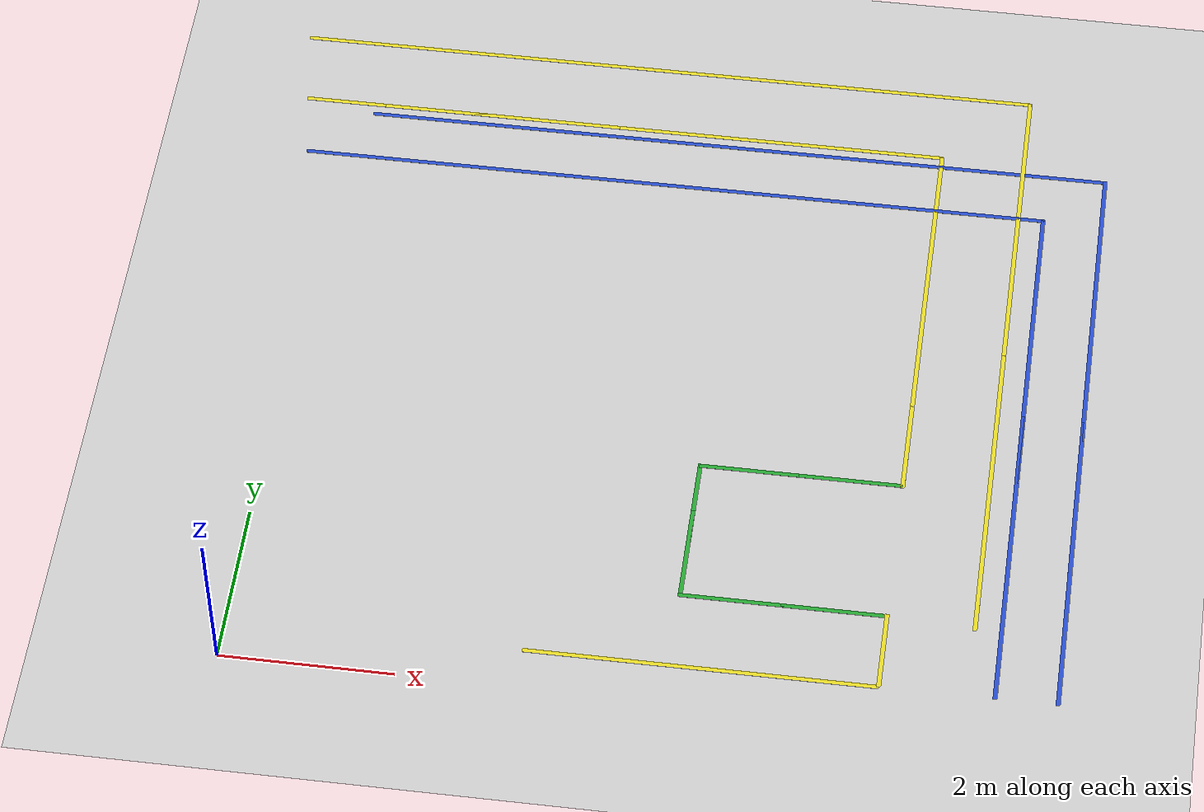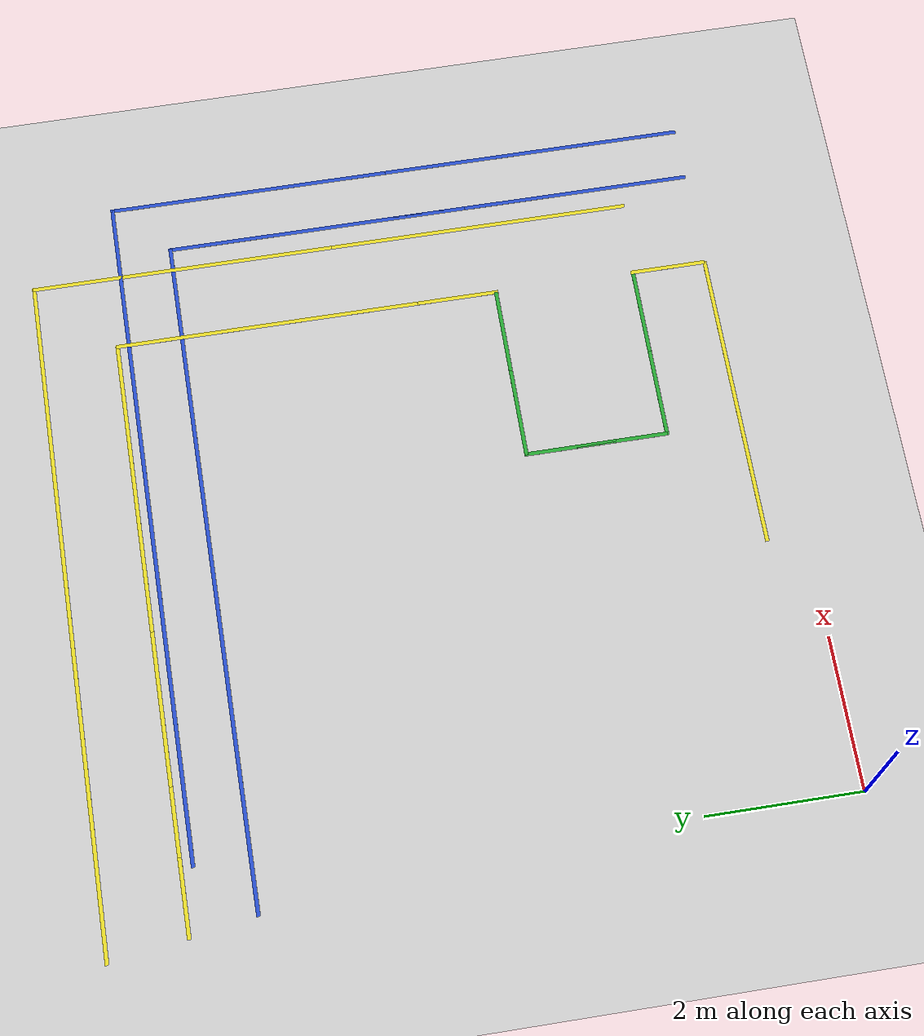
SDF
<sdf version="1.7">
 <world name="default">
  <model name="ground_plane">
   <static>1</static>
   <link name="link">
    <collision name="collision">
     <geometry><plane><normal>0 0 1</normal><size>100 100</size></plane></geometry>
     <surface>
      <contact><collide_bitmask>65535</collide_bitmask></contact>
      <friction><ode><mu>100</mu><mu2>50</mu2></ode></friction>
     </surface>
    </collision>
    <visual name="visual">
     <cast_shadows>0</cast_shadows>
     <geometry><plane><normal>0 0 1</normal><size>100 100</size></plane></geometry>
     <material>
      <script><uri>file://media/materials/scripts/gazebo.material</uri><name>Gazebo/Grey</name></script>
     </material>
    </visual>
   </link>
  </model>
  <model name="line4m">
   <link name="link_3">
    <inertial>
     <mass>1</mass>
     <inertia>
      <ixx>0.166667</ixx>
      <ixy>0</ixy>
      <ixz>0</ixz>
      <iyy>0.166667</iyy>
      <iyz>0</iyz>
      <izz>0.166667</izz>
     </inertia>
    </inertial>
    <visual name="visual">
     <geometry><box><size>0.05 4 0.001</size></box></geometry>
     <material>
      <lighting>1</lighting>
      <script><uri>file://media/materials/scripts/gazebo.material</uri><name>Gazebo/Yellow</name></script>
     </material>
    </visual>
    <collision name="collision">
     <geometry><box><size>0.05 4 1e-06</size></box></geometry>
     <surface>
      <friction>
       <ode><mu>1</mu><mu2>1</mu2><fdir1>0 0 0</fdir1><slip1>0</slip1><slip2>0</slip2></ode>
       <torsional>
        <coefficient>1</coefficient>
        <patch_radius>0</patch_radius>
        <surface_radius>0</surface_radius>
        <use_patch_radius>1</use_patch_radius>
        <ode><slip>0</slip></ode>
       </torsional>
      </friction>
      <bounce><restitution_coefficient>0</restitution_coefficient><threshold>1e+06</threshold></bounce>
      <contact>
       <collide_without_contact>0</collide_without_contact>
       <collide_without_contact_bitmask>1</collide_without_contact_bitmask>
       <collide_bitmask>1</collide_bitmask>
       <ode>
        <soft_cfm>0</soft_cfm>
        <soft_erp>0.2</soft_erp>
        <kp>1e+13</kp>
        <kd>1</kd>
        <max_vel>0.01</max_vel>
        <min_depth>0</min_depth>
       </ode>
       <bullet>
        <split_impulse>1</split_impulse>
        <split_impulse_penetration_threshold>-0.01</split_impulse_penetration_threshold>
        <soft_cfm>0</soft_cfm>
        <soft_erp>0.2</soft_erp>
        <kp>1e+13</kp>
        <kd>1</kd>
       </bullet>
      </contact>
     </surface>
    </collision>
   </link>
   <static>1</static>
   <pose>8.345 7.37225 0 0 -0 0</pose>
  </model>
  <model name="line9m_1">
   <link name="link_1">
    <inertial>
     <mass>1</mass>
     <inertia>
      <ixx>0.166667</ixx>
      <ixy>0</ixy>
      <ixz>0</ixz>
      <iyy>0.166667</iyy>
      <iyz>0</iyz>
      <izz>0.166667</izz>
     </inertia>
    </inertial>
    <visual name="visual">
     <geometry><box><size>9 0.05 0.001</size></box></geometry>
     <material>
      <lighting>1</lighting>
      <script><uri>file://media/materials/scripts/gazebo.material</uri><name>Gazebo/Yellow</name></script>
     </material>
    </visual>
    <collision name="collision">
     <geometry><box><size>9 0.05 0.001</size></box></geometry>
     <surface>
      <friction>
       <ode><mu>1</mu><mu2>1</mu2><fdir1>0 0 0</fdir1><slip1>0</slip1><slip2>0</slip2></ode>
       <torsional>
        <coefficient>1</coefficient>
        <patch_radius>0</patch_radius>
        <surface_radius>0</surface_radius>
        <use_patch_radius>1</use_patch_radius>
        <ode><slip>0</slip></ode>
       </torsional>
      </friction>
      <bounce><restitution_coefficient>0</restitution_coefficient><threshold>1e+06</threshold></bounce>
      <contact>
       <collide_without_contact>0</collide_without_contact>
       <collide_without_contact_bitmask>1</collide_without_contact_bitmask>
       <collide_bitmask>1</collide_bitmask>
       <ode>
        <soft_cfm>0</soft_cfm>
        <soft_erp>0.2</soft_erp>
        <kp>1e+13</kp>
        <kd>1</kd>
        <max_vel>0.01</max_vel>
        <min_depth>0</min_depth>
       </ode>
       <bullet>
        <split_impulse>1</split_impulse>
        <split_impulse_penetration_threshold>-0.01</split_impulse_penetration_threshold>
        <soft_cfm>0</soft_cfm>
        <soft_erp>0.2</soft_erp>
        <kp>1e+13</kp>
        <kd>1</kd>
       </bullet>
      </contact>
     </surface>
    </collision>
   </link>
   <static>1</static>
   <pose>3.87 9.35 0 0 -0 0</pose>
  </model>
  <model name="line4m_clone">
   <link name="link_3">
    <inertial>
     <mass>1</mass>
     <inertia>
      <ixx>0.166667</ixx>
      <ixy>0</ixy>
      <ixz>0</ixz>
      <iyy>0.166667</iyy>
      <iyz>0</iyz>
      <izz>0.166667</izz>
     </inertia>
    </inertial>
    <visual name="visual">
     <geometry><box><size>0.05 4 0.001</size></box></geometry>
     <material>
      <lighting>1</lighting>
      <script><uri>file://media/materials/scripts/gazebo.material</uri><name>Gazebo/Yellow</name></script>
     </material>
    </visual>
    <collision name="collision">
     <geometry><box><size>0.05 4 1e-06</size></box></geometry>
     <surface>
      <friction>
       <ode><mu>1</mu><mu2>1</mu2><fdir1>0 0 0</fdir1><slip1>0</slip1><slip2>0</slip2></ode>
       <torsional>
        <coefficient>1</coefficient>
        <patch_radius>0</patch_radius>
        <surface_radius>0</surface_radius>
        <use_patch_radius>1</use_patch_radius>
        <ode><slip>0</slip></ode>
       </torsional>
      </friction>
      <bounce><restitution_coefficient>0</restitution_coefficient><threshold>1e+06</threshold></bounce>
      <contact>
       <collide_without_contact>0</collide_without_contact>
       <collide_without_contact_bitmask>1</collide_without_contact_bitmask>
       <collide_bitmask>1</collide_bitmask>
       <ode>
        <soft_cfm>0</soft_cfm>
        <soft_erp>0.2</soft_erp>
        <kp>1e+13</kp>
        <kd>1</kd>
        <max_vel>0.01</max_vel>
        <min_depth>0</min_depth>
       </ode>
       <bullet>
        <split_impulse>1</split_impulse>
        <split_impulse_penetration_threshold>-0.01</split_impulse_penetration_threshold>
        <soft_cfm>0</soft_cfm>
        <soft_erp>0.2</soft_erp>
        <kp>1e+13</kp>
        <kd>1</kd>
       </bullet>
      </contact>
     </surface>
    </collision>
   </link>
   <static>1</static>
   <pose>8.345 3.39734 0 0 -0 0</pose>
  </model>
  <model name="line4m_4">
   <link name="link_3">
    <inertial>
     <mass>1</mass>
     <inertia>
      <ixx>0.166667</ixx>
      <ixy>0</ixy>
      <ixz>0</ixz>
      <iyy>0.166667</iyy>
      <iyz>0</iyz>
      <izz>0.166667</izz>
     </inertia>
    </inertial>
    <visual name="visual">
     <geometry><box><size>0.05 4 0.001</size></box></geometry>
     <material>
      <lighting>1</lighting>
      <script><uri>file://media/materials/scripts/gazebo.material</uri><name>Gazebo/Blue</name></script>
     </material>
    </visual>
    <collision name="collision">
     <geometry><box><size>0.05 4 1e-06</size></box></geometry>
     <surface>
      <friction>
       <ode><mu>1</mu><mu2>1</mu2><fdir1>0 0 0</fdir1><slip1>0</slip1><slip2>0</slip2></ode>
       <torsional>
        <coefficient>1</coefficient>
        <patch_radius>0</patch_radius>
        <surface_radius>0</surface_radius>
        <use_patch_radius>1</use_patch_radius>
        <ode><slip>0</slip></ode>
       </torsional>
      </friction>
      <bounce><restitution_coefficient>0</restitution_coefficient><threshold>1e+06</threshold></bounce>
      <contact>
       <collide_without_contact>0</collide_without_contact>
       <collide_without_contact_bitmask>1</collide_without_contact_bitmask>
       <collide_bitmask>1</collide_bitmask>
       <ode>
        <soft_cfm>0</soft_cfm>
        <soft_erp>0.2</soft_erp>
        <kp>1e+13</kp>
        <kd>1</kd>
        <max_vel>0.01</max_vel>
        <min_depth>0</min_depth>
       </ode>
       <bullet>
        <split_impulse>1</split_impulse>
        <split_impulse_penetration_threshold>-0.01</split_impulse_penetration_threshold>
        <soft_cfm>0</soft_cfm>
        <soft_erp>0.2</soft_erp>
        <kp>1e+13</kp>
        <kd>1</kd>
       </bullet>
      </contact>
     </surface>
    </collision>
   </link>
   <static>1</static>
   <pose>9.345 2.5 0 0 -0 0</pose>
  </model>
  <model name="line4m_4_clone">
   <link name="link_3">
    <inertial>
     <mass>1</mass>
     <inertia>
      <ixx>0.166667</ixx>
      <ixy>0</ixy>
      <ixz>0</ixz>
      <iyy>0.166667</iyy>
      <iyz>0</iyz>
      <izz>0.166667</izz>
     </inertia>
    </inertial>
    <visual name="visual">
     <geometry><box><size>0.05 4 0.001</size></box></geometry>
     <material>
      <lighting>1</lighting>
      <script><uri>file://media/materials/scripts/gazebo.material</uri><name>Gazebo/Blue</name></script>
     </material>
    </visual>
    <collision name="collision">
     <geometry><box><size>0.05 4 1e-06</size></box></geometry>
     <surface>
      <friction>
       <ode><mu>1</mu><mu2>1</mu2><fdir1>0 0 0</fdir1><slip1>0</slip1><slip2>0</slip2></ode>
       <torsional>
        <coefficient>1</coefficient>
        <patch_radius>0</patch_radius>
        <surface_radius>0</surface_radius>
        <use_patch_radius>1</use_patch_radius>
        <ode><slip>0</slip></ode>
       </torsional>
      </friction>
      <bounce><restitution_coefficient>0</restitution_coefficient><threshold>1e+06</threshold></bounce>
      <contact>
       <collide_without_contact>0</collide_without_contact>
       <collide_without_contact_bitmask>1</collide_without_contact_bitmask>
       <collide_bitmask>1</collide_bitmask>
       <ode>
        <soft_cfm>0</soft_cfm>
        <soft_erp>0.2</soft_erp>
        <kp>1e+13</kp>
        <kd>1</kd>
        <max_vel>0.01</max_vel>
        <min_depth>0</min_depth>
       </ode>
       <bullet>
        <split_impulse>1</split_impulse>
        <split_impulse_penetration_threshold>-0.01</split_impulse_penetration_threshold>
        <soft_cfm>0</soft_cfm>
        <soft_erp>0.2</soft_erp>
        <kp>1e+13</kp>
        <kd>1</kd>
       </bullet>
      </contact>
     </surface>
    </collision>
   </link>
   <static>1</static>
   <pose>9.345 6.225 0 0 -0 0</pose>
  </model>
  <model name="line9m_11">
   <link name="link_1">
    <inertial>
     <mass>1</mass>
     <inertia>
      <ixx>0.166667</ixx>
      <ixy>0</ixy>
      <ixz>0</ixz>
      <iyy>0.166667</iyy>
      <iyz>0</iyz>
      <izz>0.166667</izz>
     </inertia>
    </inertial>
    <visual name="visual">
     <geometry><box><size>9 0.05 0.001</size></box></geometry>
     <material>
      <lighting>1</lighting>
      <script><uri>file://media/materials/scripts/gazebo.material</uri><name>Gazebo/Blue</name></script>
     </material>
    </visual>
    <collision name="collision">
     <geometry><box><size>9 0.05 0.001</size></box></geometry>
     <surface>
      <friction>
       <ode><mu>1</mu><mu2>1</mu2><fdir1>0 0 0</fdir1><slip1>0</slip1><slip2>0</slip2></ode>
       <torsional>
        <coefficient>1</coefficient>
        <patch_radius>0</patch_radius>
        <surface_radius>0</surface_radius>
        <use_patch_radius>1</use_patch_radius>
        <ode><slip>0</slip></ode>
       </torsional>
      </friction>
      <bounce><restitution_coefficient>0</restitution_coefficient><threshold>1e+06</threshold></bounce>
      <contact>
       <collide_without_contact>0</collide_without_contact>
       <collide_without_contact_bitmask>1</collide_without_contact_bitmask>
       <collide_bitmask>1</collide_bitmask>
       <ode>
        <soft_cfm>0</soft_cfm>
        <soft_erp>0.2</soft_erp>
        <kp>1e+13</kp>
        <kd>1</kd>
        <max_vel>0.01</max_vel>
        <min_depth>0</min_depth>
       </ode>
       <bullet>
        <split_impulse>1</split_impulse>
        <split_impulse_penetration_threshold>-0.01</split_impulse_penetration_threshold>
        <soft_cfm>0</soft_cfm>
        <soft_erp>0.2</soft_erp>
        <kp>1e+13</kp>
        <kd>1</kd>
       </bullet>
      </contact>
     </surface>
    </collision>
   </link>
   <static>1</static>
   <pose>4.867 8.2 0 0 -0 0</pose>
  </model>
  <model name="line9m_14">
   <link name="link_1">
    <inertial>
     <mass>1</mass>
     <inertia>
      <ixx>0.166667</ixx>
      <ixy>0</ixy>
      <ixz>0</ixz>
      <iyy>0.166667</iyy>
      <iyz>0</iyz>
      <izz>0.166667</izz>
     </inertia>
    </inertial>
    <visual name="visual">
     <geometry><box><size>9 0.05 0.001</size></box></geometry>
     <material>
      <lighting>1</lighting>
      <script><uri>file://media/materials/scripts/gazebo.material</uri><name>Gazebo/Blue</name></script>
     </material>
    </visual>
    <collision name="collision">
     <geometry><box><size>9 0.05 0.001</size></box></geometry>
     <surface>
      <friction>
       <ode><mu>1</mu><mu2>1</mu2><fdir1>0 0 0</fdir1><slip1>0</slip1><slip2>0</slip2></ode>
       <torsional>
        <coefficient>1</coefficient>
        <patch_radius>0</patch_radius>
        <surface_radius>0</surface_radius>
        <use_patch_radius>1</use_patch_radius>
        <ode><slip>0</slip></ode>
       </torsional>
      </friction>
      <bounce><restitution_coefficient>0</restitution_coefficient><threshold>1e+06</threshold></bounce>
      <contact>
       <collide_without_contact>0</collide_without_contact>
       <collide_without_contact_bitmask>1</collide_without_contact_bitmask>
       <collide_bitmask>1</collide_bitmask>
       <ode>
        <soft_cfm>0</soft_cfm>
        <soft_erp>0.2</soft_erp>
        <kp>1e+13</kp>
        <kd>1</kd>
        <max_vel>0.01</max_vel>
        <min_depth>0</min_depth>
       </ode>
       <bullet>
        <split_impulse>1</split_impulse>
        <split_impulse_penetration_threshold>-0.01</split_impulse_penetration_threshold>
        <soft_cfm>0</soft_cfm>
        <soft_erp>0.2</soft_erp>
        <kp>1e+13</kp>
        <kd>1</kd>
       </bullet>
      </contact>
     </surface>
    </collision>
   </link>
   <static>1</static>
   <pose>4.16033 7.5 0 0 -0 0</pose>
  </model>
  <model name="line4m_5">
   <link name="link_3">
    <inertial>
     <mass>1</mass>
     <inertia>
      <ixx>0.166667</ixx>
      <ixy>0</ixy>
      <ixz>0</ixz>
      <iyy>0.166667</iyy>
      <iyz>0</iyz>
      <izz>0.166667</izz>
     </inertia>
    </inertial>
    <visual name="visual">
     <geometry><box><size>0.05 4 0.001</size></box></geometry>
     <material>
      <lighting>1</lighting>
      <script><uri>file://media/materials/scripts/gazebo.material</uri><name>Gazebo/Blue</name></script>
     </material>
    </visual>
    <collision name="collision">
     <geometry><box><size>0.05 4 1e-06</size></box></geometry>
     <surface>
      <friction>
       <ode><mu>1</mu><mu2>1</mu2><fdir1>0 0 0</fdir1><slip1>0</slip1><slip2>0</slip2></ode>
       <torsional>
        <coefficient>1</coefficient>
        <patch_radius>0</patch_radius>
        <surface_radius>0</surface_radius>
        <use_patch_radius>1</use_patch_radius>
        <ode><slip>0</slip></ode>
       </torsional>
      </friction>
      <bounce><restitution_coefficient>0</restitution_coefficient><threshold>1e+06</threshold></bounce>
      <contact>
       <collide_without_contact>0</collide_without_contact>
       <collide_without_contact_bitmask>1</collide_without_contact_bitmask>
       <collide_bitmask>1</collide_bitmask>
       <ode>
        <soft_cfm>0</soft_cfm>
        <soft_erp>0.2</soft_erp>
        <kp>1e+13</kp>
        <kd>1</kd>
        <max_vel>0.01</max_vel>
        <min_depth>0</min_depth>
       </ode>
       <bullet>
        <split_impulse>1</split_impulse>
        <split_impulse_penetration_threshold>-0.01</split_impulse_penetration_threshold>
        <soft_cfm>0</soft_cfm>
        <soft_erp>0.2</soft_erp>
        <kp>1e+13</kp>
        <kd>1</kd>
       </bullet>
      </contact>
     </surface>
    </collision>
   </link>
   <static>1</static>
   <pose>8.645 5.52339 0 0 -0 0</pose>
  </model>
  <model name="line4m_5_clone_0">
   <link name="link_3">
    <inertial>
     <mass>1</mass>
     <inertia>
      <ixx>0.166667</ixx>
      <ixy>0</ixy>
      <ixz>0</ixz>
      <iyy>0.166667</iyy>
      <iyz>0</iyz>
      <izz>0.166667</izz>
     </inertia>
    </inertial>
    <visual name="visual">
     <geometry><box><size>0.05 4 0.001</size></box></geometry>
     <material>
      <lighting>1</lighting>
      <script><uri>file://media/materials/scripts/gazebo.material</uri><name>Gazebo/Blue</name></script>
     </material>
    </visual>
    <collision name="collision">
     <geometry><box><size>0.05 4 1e-06</size></box></geometry>
     <surface>
      <friction>
       <ode><mu>1</mu><mu2>1</mu2><fdir1>0 0 0</fdir1><slip1>0</slip1><slip2>0</slip2></ode>
       <torsional>
        <coefficient>1</coefficient>
        <patch_radius>0</patch_radius>
        <surface_radius>0</surface_radius>
        <use_patch_radius>1</use_patch_radius>
        <ode><slip>0</slip></ode>
       </torsional>
      </friction>
      <bounce><restitution_coefficient>0</restitution_coefficient><threshold>1e+06</threshold></bounce>
      <contact>
       <collide_without_contact>0</collide_without_contact>
       <collide_without_contact_bitmask>1</collide_without_contact_bitmask>
       <collide_bitmask>1</collide_bitmask>
       <ode>
        <soft_cfm>0</soft_cfm>
        <soft_erp>0.2</soft_erp>
        <kp>1e+13</kp>
        <kd>1</kd>
        <max_vel>0.01</max_vel>
        <min_depth>0</min_depth>
       </ode>
       <bullet>
        <split_impulse>1</split_impulse>
        <split_impulse_penetration_threshold>-0.01</split_impulse_penetration_threshold>
        <soft_cfm>0</soft_cfm>
        <soft_erp>0.2</soft_erp>
        <kp>1e+13</kp>
        <kd>1</kd>
       </bullet>
      </contact>
     </surface>
    </collision>
   </link>
   <static>1</static>
   <pose>8.645 2.5 0 0 -0 0</pose>
  </model>
  <model name="line4m_20">
   <link name="link_3">
    <inertial>
     <mass>1</mass>
     <inertia>
      <ixx>0.166667</ixx>
      <ixy>0</ixy>
      <ixz>0</ixz>
      <iyy>0.166667</iyy>
      <iyz>0</iyz>
      <izz>0.166667</izz>
     </inertia>
    </inertial>
    <visual name="visual">
     <geometry><box><size>0.05 4 0.001</size></box></geometry>
     <material>
      <lighting>1</lighting>
      <script><uri>file://media/materials/scripts/gazebo.material</uri><name>Gazebo/Yellow</name></script>
     </material>
    </visual>
    <collision name="collision">
     <geometry><box><size>0.05 4 1e-06</size></box></geometry>
     <surface>
      <friction>
       <ode><mu>1</mu><mu2>1</mu2><fdir1>0 0 0</fdir1><slip1>0</slip1><slip2>0</slip2></ode>
       <torsional>
        <coefficient>1</coefficient>
        <patch_radius>0</patch_radius>
        <surface_radius>0</surface_radius>
        <use_patch_radius>1</use_patch_radius>
        <ode><slip>0</slip></ode>
       </torsional>
      </friction>
      <bounce><restitution_coefficient>0</restitution_coefficient><threshold>1e+06</threshold></bounce>
      <contact>
       <collide_without_contact>0</collide_without_contact>
       <collide_without_contact_bitmask>1</collide_without_contact_bitmask>
       <collide_bitmask>1</collide_bitmask>
       <ode>
        <soft_cfm>0</soft_cfm>
        <soft_erp>0.2</soft_erp>
        <kp>1e+13</kp>
        <kd>1</kd>
        <max_vel>0.01</max_vel>
        <min_depth>0</min_depth>
       </ode>
       <bullet>
        <split_impulse>1</split_impulse>
        <split_impulse_penetration_threshold>-0.01</split_impulse_penetration_threshold>
        <soft_cfm>0</soft_cfm>
        <soft_erp>0.2</soft_erp>
        <kp>1e+13</kp>
        <kd>1</kd>
       </bullet>
      </contact>
     </surface>
    </collision>
   </link>
   <static>1</static>
   <pose>5.35745 0.500378 0 0 -0 1.571</pose>
  </model>
  <model name="line4m_24">
   <link name="link_3">
    <inertial>
     <mass>1</mass>
     <inertia>
      <ixx>0.166667</ixx>
      <ixy>0</ixy>
      <ixz>0</ixz>
      <iyy>0.166667</iyy>
      <iyz>0</iyz>
      <izz>0.166667</izz>
     </inertia>
    </inertial>
    <visual name="visual">
     <geometry><box><size>0.05 4 0.001</size></box></geometry>
     <material>
      <lighting>1</lighting>
      <script><uri>file://media/materials/scripts/gazebo.material</uri><name>Gazebo/Yellow</name></script>
     </material>
    </visual>
    <collision name="collision">
     <geometry><box><size>0.05 4 1e-06</size></box></geometry>
     <surface>
      <friction>
       <ode><mu>1</mu><mu2>1</mu2><fdir1>0 0 0</fdir1><slip1>0</slip1><slip2>0</slip2></ode>
       <torsional>
        <coefficient>1</coefficient>
        <patch_radius>0</patch_radius>
        <surface_radius>0</surface_radius>
        <use_patch_radius>1</use_patch_radius>
        <ode><slip>0</slip></ode>
       </torsional>
      </friction>
      <bounce><restitution_coefficient>0</restitution_coefficient><threshold>1e+06</threshold></bounce>
      <contact>
       <collide_without_contact>0</collide_without_contact>
       <collide_without_contact_bitmask>1</collide_without_contact_bitmask>
       <collide_bitmask>1</collide_bitmask>
       <ode>
        <soft_cfm>0</soft_cfm>
        <soft_erp>0.2</soft_erp>
        <kp>1e+13</kp>
        <kd>1</kd>
        <max_vel>0.01</max_vel>
        <min_depth>0</min_depth>
       </ode>
       <bullet>
        <split_impulse>1</split_impulse>
        <split_impulse_penetration_threshold>-0.01</split_impulse_penetration_threshold>
        <soft_cfm>0</soft_cfm>
        <soft_erp>0.2</soft_erp>
        <kp>1e+13</kp>
        <kd>1</kd>
       </bullet>
      </contact>
     </surface>
    </collision>
   </link>
   <static>1</static>
   <pose>7.35 6.36789 0 0 -0 0</pose>
  </model>
  <model name="line4m_28">
   <link name="link_3">
    <inertial>
     <mass>1</mass>
     <inertia>
      <ixx>0.166667</ixx>
      <ixy>0</ixy>
      <ixz>0</ixz>
      <iyy>0.166667</iyy>
      <iyz>0</iyz>
      <izz>0.166667</izz>
     </inertia>
    </inertial>
    <visual name="visual">
     <geometry><box><size>0.05 4 0.001</size></box></geometry>
     <material>
      <lighting>1</lighting>
      <script><uri>file://media/materials/scripts/gazebo.material</uri><name>Gazebo/Yellow</name></script>
     </material>
    </visual>
    <collision name="collision">
     <geometry><box><size>0.05 4 1e-06</size></box></geometry>
     <surface>
      <friction>
       <ode><mu>1</mu><mu2>1</mu2><fdir1>0 0 0</fdir1><slip1>0</slip1><slip2>0</slip2></ode>
       <torsional>
        <coefficient>1</coefficient>
        <patch_radius>0</patch_radius>
        <surface_radius>0</surface_radius>
        <use_patch_radius>1</use_patch_radius>
        <ode><slip>0</slip></ode>
       </torsional>
      </friction>
      <bounce><restitution_coefficient>0</restitution_coefficient><threshold>1e+06</threshold></bounce>
      <contact>
       <collide_without_contact>0</collide_without_contact>
       <collide_without_contact_bitmask>1</collide_without_contact_bitmask>
       <collide_bitmask>1</collide_bitmask>
       <ode>
        <soft_cfm>0</soft_cfm>
        <soft_erp>0.2</soft_erp>
        <kp>1e+13</kp>
        <kd>1</kd>
        <max_vel>0.01</max_vel>
        <min_depth>0</min_depth>
       </ode>
       <bullet>
        <split_impulse>1</split_impulse>
        <split_impulse_penetration_threshold>-0.01</split_impulse_penetration_threshold>
        <soft_cfm>0</soft_cfm>
        <soft_erp>0.2</soft_erp>
        <kp>1e+13</kp>
        <kd>1</kd>
       </bullet>
      </contact>
     </surface>
    </collision>
   </link>
   <static>1</static>
   <pose>5.35658 8.35024 0 0 -0 1.571</pose>
  </model>
  <model name="line2m_2">
   <link name="link_0">
    <inertial>
     <mass>1</mass>
     <inertia>
      <ixx>0.166667</ixx>
      <ixy>0</ixy>
      <ixz>0</ixz>
      <iyy>0.166667</iyy>
      <iyz>0</iyz>
      <izz>0.166667</izz>
     </inertia>
    </inertial>
    <visual name="visual">
     <geometry><box><size>2 0.05 0.001</size></box></geometry>
     <material>
      <lighting>1</lighting>
      <script><uri>file://media/materials/scripts/gazebo.material</uri><name>Gazebo/Yellow</name></script>
     </material>
    </visual>
    <collision name="collision">
     <geometry><box><size>2 0.05 1e-05</size></box></geometry>
     <surface>
      <friction>
       <ode><mu>1</mu><mu2>1</mu2><fdir1>0 0 0</fdir1><slip1>0</slip1><slip2>0</slip2></ode>
       <torsional>
        <coefficient>1</coefficient>
        <patch_radius>0</patch_radius>
        <surface_radius>0</surface_radius>
        <use_patch_radius>1</use_patch_radius>
        <ode><slip>0</slip></ode>
       </torsional>
      </friction>
      <bounce><restitution_coefficient>0</restitution_coefficient><threshold>1e+06</threshold></bounce>
      <contact>
       <collide_without_contact>0</collide_without_contact>
       <collide_without_contact_bitmask>1</collide_without_contact_bitmask>
       <collide_bitmask>1</collide_bitmask>
       <ode>
        <soft_cfm>0</soft_cfm>
        <soft_erp>0.2</soft_erp>
        <kp>1e+13</kp>
        <kd>1</kd>
        <max_vel>0.01</max_vel>
        <min_depth>0</min_depth>
       </ode>
       <bullet>
        <split_impulse>1</split_impulse>
        <split_impulse_penetration_threshold>-0.01</split_impulse_penetration_threshold>
        <soft_cfm>0</soft_cfm>
        <soft_erp>0.2</soft_erp>
        <kp>1e+13</kp>
        <kd>1</kd>
       </bullet>
      </contact>
     </surface>
    </collision>
   </link>
   <static>1</static>
   <pose>1.49727 8.35 0 0 -0 0</pose>
  </model>
  <model name="line2m_3">
   <link name="link_0">
    <inertial>
     <mass>1</mass>
     <inertia>
      <ixx>0.166667</ixx>
      <ixy>0</ixy>
      <ixz>0</ixz>
      <iyy>0.166667</iyy>
      <iyz>0</iyz>
      <izz>0.166667</izz>
     </inertia>
    </inertial>
    <visual name="visual">
     <geometry><box><size>2 0.05 0.001</size></box></geometry>
     <material>
      <lighting>1</lighting>
      <script><uri>file://media/materials/scripts/gazebo.material</uri><name>Gazebo/Yellow</name></script>
     </material>
    </visual>
    <collision name="collision">
     <geometry><box><size>2 0.05 1e-05</size></box></geometry>
     <surface>
      <friction>
       <ode><mu>1</mu><mu2>1</mu2><fdir1>0 0 0</fdir1><slip1>0</slip1><slip2>0</slip2></ode>
       <torsional>
        <coefficient>1</coefficient>
        <patch_radius>0</patch_radius>
        <surface_radius>0</surface_radius>
        <use_patch_radius>1</use_patch_radius>
        <ode><slip>0</slip></ode>
       </torsional>
      </friction>
      <bounce><restitution_coefficient>0</restitution_coefficient><threshold>1e+06</threshold></bounce>
      <contact>
       <collide_without_contact>0</collide_without_contact>
       <collide_without_contact_bitmask>1</collide_without_contact_bitmask>
       <collide_bitmask>1</collide_bitmask>
       <ode>
        <soft_cfm>0</soft_cfm>
        <soft_erp>0.2</soft_erp>
        <kp>1e+13</kp>
        <kd>1</kd>
        <max_vel>0.01</max_vel>
        <min_depth>0</min_depth>
       </ode>
       <bullet>
        <split_impulse>1</split_impulse>
        <split_impulse_penetration_threshold>-0.01</split_impulse_penetration_threshold>
        <soft_cfm>0</soft_cfm>
        <soft_erp>0.2</soft_erp>
        <kp>1e+13</kp>
        <kd>1</kd>
       </bullet>
      </contact>
     </surface>
    </collision>
   </link>
   <static>1</static>
   <pose>2.39238 8.35 0 0 -0 0</pose>
  </model>
  <model name="line100cm_clone">
   <link name="link_1">
    <inertial>
     <mass>1</mass>
     <inertia>
      <ixx>0.166667</ixx>
      <ixy>0</ixy>
      <ixz>0</ixz>
      <iyy>0.166667</iyy>
      <iyz>0</iyz>
      <izz>0.166667</izz>
     </inertia>
    </inertial>
    <visual name="visual">
     <geometry><box><size>1 0.05 0.001</size></box></geometry>
     <material>
      <script><uri>file://media/materials/scripts/gazebo.material</uri><name>Gazebo/Yellow</name></script>
     </material>
    </visual>
    <collision name="collision">
     <geometry><box><size>1 0.05 1e-05</size></box></geometry>
     <surface>
      <friction>
       <ode><mu>1</mu><mu2>1</mu2><fdir1>0 0 0</fdir1><slip1>0</slip1><slip2>0</slip2></ode>
       <torsional>
        <coefficient>1</coefficient>
        <patch_radius>0</patch_radius>
        <surface_radius>0</surface_radius>
        <use_patch_radius>1</use_patch_radius>
        <ode><slip>0</slip></ode>
       </torsional>
      </friction>
      <bounce><restitution_coefficient>0</restitution_coefficient><threshold>1e+06</threshold></bounce>
      <contact>
       <collide_without_contact>0</collide_without_contact>
       <collide_without_contact_bitmask>1</collide_without_contact_bitmask>
       <collide_bitmask>1</collide_bitmask>
       <ode>
        <soft_cfm>0</soft_cfm>
        <soft_erp>0.2</soft_erp>
        <kp>1e+13</kp>
        <kd>1</kd>
        <max_vel>0.01</max_vel>
        <min_depth>0</min_depth>
       </ode>
       <bullet>
        <split_impulse>1</split_impulse>
        <split_impulse_penetration_threshold>-0.01</split_impulse_penetration_threshold>
        <soft_cfm>0</soft_cfm>
        <soft_erp>0.2</soft_erp>
        <kp>1e+13</kp>
        <kd>1</kd>
       </bullet>
      </contact>
     </surface>
    </collision>
   </link>
   <static>1</static>
   <pose>0.018297 8.35 0 0 -0 0</pose>
  </model>
  <model name="line120cm_15">
   <link name="link_1">
    <inertial>
     <mass>1</mass>
     <inertia>
      <ixx>0.166667</ixx>
      <ixy>0</ixy>
      <ixz>0</ixz>
      <iyy>0.166667</iyy>
      <iyz>0</iyz>
      <izz>0.166667</izz>
     </inertia>
    </inertial>
    <visual name="visual">
     <geometry><box><size>1.2 0.05 0.001</size></box></geometry>
     <material>
      <script><uri>file://media/materials/scripts/gazebo.material</uri><name>Gazebo/Green</name></script>
     </material>
    </visual>
    <collision name="collision">
     <geometry><box><size>1.2 0.05 1e-05</size></box></geometry>
     <surface>
      <friction>
       <ode><mu>1</mu><mu2>1</mu2><fdir1>0 0 0</fdir1><slip1>0</slip1><slip2>0</slip2></ode>
       <torsional>
        <coefficient>1</coefficient>
        <patch_radius>0</patch_radius>
        <surface_radius>0</surface_radius>
        <use_patch_radius>1</use_patch_radius>
        <ode><slip>0</slip></ode>
       </torsional>
      </friction>
      <bounce><restitution_coefficient>0</restitution_coefficient><threshold>1e+06</threshold></bounce>
      <contact>
       <collide_without_contact>0</collide_without_contact>
       <collide_without_contact_bitmask>1</collide_without_contact_bitmask>
       <collide_bitmask>1</collide_bitmask>
       <ode>
        <soft_cfm>0</soft_cfm>
        <soft_erp>0.2</soft_erp>
        <kp>1e+13</kp>
        <kd>1</kd>
        <max_vel>0.01</max_vel>
        <min_depth>0</min_depth>
       </ode>
       <bullet>
        <split_impulse>1</split_impulse>
        <split_impulse_penetration_threshold>-0.01</split_impulse_penetration_threshold>
        <soft_cfm>0</soft_cfm>
        <soft_erp>0.2</soft_erp>
        <kp>1e+13</kp>
        <kd>1</kd>
       </bullet>
      </contact>
     </surface>
    </collision>
   </link>
   <static>1</static>
   <pose>6.75 3.315 0 0 -0 0</pose>
  </model>
  <model name="line120cm_16">
   <link name="link_1">
    <inertial>
     <mass>1</mass>
     <inertia>
      <ixx>0.166667</ixx>
      <ixy>0</ixy>
      <ixz>0</ixz>
      <iyy>0.166667</iyy>
      <iyz>0</iyz>
      <izz>0.166667</izz>
     </inertia>
    </inertial>
    <visual name="visual">
     <geometry><box><size>1.2 0.05 0.001</size></box></geometry>
     <material>
      <script><uri>file://media/materials/scripts/gazebo.material</uri><name>Gazebo/Yellow</name></script>
     </material>
    </visual>
    <collision name="collision">
     <geometry><box><size>1.2 0.05 1e-05</size></box></geometry>
     <surface>
      <friction>
       <ode><mu>1</mu><mu2>1</mu2><fdir1>0 0 0</fdir1><slip1>0</slip1><slip2>0</slip2></ode>
       <torsional>
        <coefficient>1</coefficient>
        <patch_radius>0</patch_radius>
        <surface_radius>0</surface_radius>
        <use_patch_radius>1</use_patch_radius>
        <ode><slip>0</slip></ode>
       </torsional>
      </friction>
      <bounce><restitution_coefficient>0</restitution_coefficient><threshold>1e+06</threshold></bounce>
      <contact>
       <collide_without_contact>0</collide_without_contact>
       <collide_without_contact_bitmask>1</collide_without_contact_bitmask>
       <collide_bitmask>1</collide_bitmask>
       <ode>
        <soft_cfm>0</soft_cfm>
        <soft_erp>0.2</soft_erp>
        <kp>1e+13</kp>
        <kd>1</kd>
        <max_vel>0.01</max_vel>
        <min_depth>0</min_depth>
       </ode>
       <bullet>
        <split_impulse>1</split_impulse>
        <split_impulse_penetration_threshold>-0.01</split_impulse_penetration_threshold>
        <soft_cfm>0</soft_cfm>
        <soft_erp>0.2</soft_erp>
        <kp>1e+13</kp>
        <kd>1</kd>
       </bullet>
      </contact>
     </surface>
    </collision>
   </link>
   <static>1</static>
   <pose>7.35 3.88661 0 0 -0 1.571</pose>
  </model>
  <model name="line120cm_17">
   <link name="link_1">
    <inertial>
     <mass>1</mass>
     <inertia>
      <ixx>0.166667</ixx>
      <ixy>0</ixy>
      <ixz>0</ixz>
      <iyy>0.166667</iyy>
      <iyz>0</iyz>
      <izz>0.166667</izz>
     </inertia>
    </inertial>
    <visual name="visual">
     <geometry><box><size>1.2 0.05 0.001</size></box></geometry>
     <material>
      <script><uri>file://media/materials/scripts/gazebo.material</uri><name>Gazebo/Green</name></script>
     </material>
    </visual>
    <collision name="collision">
     <geometry><box><size>1.2 0.05 1e-05</size></box></geometry>
     <surface>
      <friction>
       <ode><mu>1</mu><mu2>1</mu2><fdir1>0 0 0</fdir1><slip1>0</slip1><slip2>0</slip2></ode>
       <torsional>
        <coefficient>1</coefficient>
        <patch_radius>0</patch_radius>
        <surface_radius>0</surface_radius>
        <use_patch_radius>1</use_patch_radius>
        <ode><slip>0</slip></ode>
       </torsional>
      </friction>
      <bounce><restitution_coefficient>0</restitution_coefficient><threshold>1e+06</threshold></bounce>
      <contact>
       <collide_without_contact>0</collide_without_contact>
       <collide_without_contact_bitmask>1</collide_without_contact_bitmask>
       <collide_bitmask>1</collide_bitmask>
       <ode>
        <soft_cfm>0</soft_cfm>
        <soft_erp>0.2</soft_erp>
        <kp>1e+13</kp>
        <kd>1</kd>
        <max_vel>0.01</max_vel>
        <min_depth>0</min_depth>
       </ode>
       <bullet>
        <split_impulse>1</split_impulse>
        <split_impulse_penetration_threshold>-0.01</split_impulse_penetration_threshold>
        <soft_cfm>0</soft_cfm>
        <soft_erp>0.2</soft_erp>
        <kp>1e+13</kp>
        <kd>1</kd>
       </bullet>
      </contact>
     </surface>
    </collision>
   </link>
   <static>1</static>
   <pose>5.6 3.315 0 0 -0 0</pose>
  </model>
  <model name="line120cm_18">
   <link name="link_1">
    <inertial>
     <mass>1</mass>
     <inertia>
      <ixx>0.166667</ixx>
      <ixy>0</ixy>
      <ixz>0</ixz>
      <iyy>0.166667</iyy>
      <iyz>0</iyz>
      <izz>0.166667</izz>
     </inertia>
    </inertial>
    <visual name="visual">
     <geometry><box><size>1.2 0.05 0.001</size></box></geometry>
     <material>
      <script><uri>file://media/materials/scripts/gazebo.material</uri><name>Gazebo/Green</name></script>
     </material>
    </visual>
    <collision name="collision">
     <geometry><box><size>1.2 0.05 1e-05</size></box></geometry>
     <surface>
      <friction>
       <ode><mu>1</mu><mu2>1</mu2><fdir1>0 0 0</fdir1><slip1>0</slip1><slip2>0</slip2></ode>
       <torsional>
        <coefficient>1</coefficient>
        <patch_radius>0</patch_radius>
        <surface_radius>0</surface_radius>
        <use_patch_radius>1</use_patch_radius>
        <ode><slip>0</slip></ode>
       </torsional>
      </friction>
      <bounce><restitution_coefficient>0</restitution_coefficient><threshold>1e+06</threshold></bounce>
      <contact>
       <collide_without_contact>0</collide_without_contact>
       <collide_without_contact_bitmask>1</collide_without_contact_bitmask>
       <collide_bitmask>1</collide_bitmask>
       <ode>
        <soft_cfm>0</soft_cfm>
        <soft_erp>0.2</soft_erp>
        <kp>1e+13</kp>
        <kd>1</kd>
        <max_vel>0.01</max_vel>
        <min_depth>0</min_depth>
       </ode>
       <bullet>
        <split_impulse>1</split_impulse>
        <split_impulse_penetration_threshold>-0.01</split_impulse_penetration_threshold>
        <soft_cfm>0</soft_cfm>
        <soft_erp>0.2</soft_erp>
        <kp>1e+13</kp>
        <kd>1</kd>
       </bullet>
      </contact>
     </surface>
    </collision>
   </link>
   <static>1</static>
   <pose>5.01 2.73941 0 0 -0 1.571</pose>
  </model>
  <model name="line120cm_19">
   <link name="link_1">
    <inertial>
     <mass>1</mass>
     <inertia>
      <ixx>0.166667</ixx>
      <ixy>0</ixy>
      <ixz>0</ixz>
      <iyy>0.166667</iyy>
      <iyz>0</iyz>
      <izz>0.166667</izz>
     </inertia>
    </inertial>
    <visual name="visual">
     <geometry><box><size>1.2 0.05 0.001</size></box></geometry>
     <material>
      <script><uri>file://media/materials/scripts/gazebo.material</uri><name>Gazebo/Green</name></script>
     </material>
    </visual>
    <collision name="collision">
     <geometry><box><size>1.2 0.05 1e-05</size></box></geometry>
     <surface>
      <friction>
       <ode><mu>1</mu><mu2>1</mu2><fdir1>0 0 0</fdir1><slip1>0</slip1><slip2>0</slip2></ode>
       <torsional>
        <coefficient>1</coefficient>
        <patch_radius>0</patch_radius>
        <surface_radius>0</surface_radius>
        <use_patch_radius>1</use_patch_radius>
        <ode><slip>0</slip></ode>
       </torsional>
      </friction>
      <bounce><restitution_coefficient>0</restitution_coefficient><threshold>1e+06</threshold></bounce>
      <contact>
       <collide_without_contact>0</collide_without_contact>
       <collide_without_contact_bitmask>1</collide_without_contact_bitmask>
       <collide_bitmask>1</collide_bitmask>
       <ode>
        <soft_cfm>0</soft_cfm>
        <soft_erp>0.2</soft_erp>
        <kp>1e+13</kp>
        <kd>1</kd>
        <max_vel>0.01</max_vel>
        <min_depth>0</min_depth>
       </ode>
       <bullet>
        <split_impulse>1</split_impulse>
        <split_impulse_penetration_threshold>-0.01</split_impulse_penetration_threshold>
        <soft_cfm>0</soft_cfm>
        <soft_erp>0.2</soft_erp>
        <kp>1e+13</kp>
        <kd>1</kd>
       </bullet>
      </contact>
     </surface>
    </collision>
   </link>
   <static>1</static>
   <pose>5.01001 2.0637 0 0 -0 1.571</pose>
  </model>
  <model name="line100cm">
   <link name="link_1">
    <inertial>
     <mass>1</mass>
     <inertia>
      <ixx>0.166667</ixx>
      <ixy>0</ixy>
      <ixz>0</ixz>
      <iyy>0.166667</iyy>
      <iyz>0</iyz>
      <izz>0.166667</izz>
     </inertia>
    </inertial>
    <visual name="visual">
     <geometry><box><size>1 0.05 0.001</size></box></geometry>
     <material>
      <script><uri>file://media/materials/scripts/gazebo.material</uri><name>Gazebo/Yellow</name></script>
     </material>
    </visual>
    <collision name="collision">
     <geometry><box><size>1 0.05 1e-05</size></box></geometry>
     <surface>
      <friction>
       <ode><mu>1</mu><mu2>1</mu2><fdir1>0 0 0</fdir1><slip1>0</slip1><slip2>0</slip2></ode>
       <torsional>
        <coefficient>1</coefficient>
        <patch_radius>0</patch_radius>
        <surface_radius>0</surface_radius>
        <use_patch_radius>1</use_patch_radius>
        <ode><slip>0</slip></ode>
       </torsional>
      </friction>
      <bounce><restitution_coefficient>0</restitution_coefficient><threshold>1e+06</threshold></bounce>
      <contact>
       <collide_without_contact>0</collide_without_contact>
       <collide_without_contact_bitmask>1</collide_without_contact_bitmask>
       <collide_bitmask>1</collide_bitmask>
       <ode>
        <soft_cfm>0</soft_cfm>
        <soft_erp>0.2</soft_erp>
        <kp>1e+13</kp>
        <kd>1</kd>
        <max_vel>0.01</max_vel>
        <min_depth>0</min_depth>
       </ode>
       <bullet>
        <split_impulse>1</split_impulse>
        <split_impulse_penetration_threshold>-0.01</split_impulse_penetration_threshold>
        <soft_cfm>0</soft_cfm>
        <soft_erp>0.2</soft_erp>
        <kp>1e+13</kp>
        <kd>1</kd>
       </bullet>
      </contact>
     </surface>
    </collision>
   </link>
   <static>1</static>
   <pose>7.35 1 0.001 0 -0 1.571</pose>
  </model>
  <model name="line120cm_20">
   <link name="link_1">
    <inertial>
     <mass>1</mass>
     <inertia>
      <ixx>0.166667</ixx>
      <ixy>0</ixy>
      <ixz>0</ixz>
      <iyy>0.166667</iyy>
      <iyz>0</iyz>
      <izz>0.166667</izz>
     </inertia>
    </inertial>
    <visual name="visual">
     <geometry><box><size>1.2 0.05 0.001</size></box></geometry>
     <material>
      <script><uri>file://media/materials/scripts/gazebo.material</uri><name>Gazebo/Green</name></script>
     </material>
    </visual>
    <collision name="collision">
     <geometry><box><size>1.2 0.05 1e-05</size></box></geometry>
     <surface>
      <friction>
       <ode><mu>1</mu><mu2>1</mu2><fdir1>0 0 0</fdir1><slip1>0</slip1><slip2>0</slip2></ode>
       <torsional>
        <coefficient>1</coefficient>
        <patch_radius>0</patch_radius>
        <surface_radius>0</surface_radius>
        <use_patch_radius>1</use_patch_radius>
        <ode><slip>0</slip></ode>
       </torsional>
      </friction>
      <bounce><restitution_coefficient>0</restitution_coefficient><threshold>1e+06</threshold></bounce>
      <contact>
       <collide_without_contact>0</collide_without_contact>
       <collide_without_contact_bitmask>1</collide_without_contact_bitmask>
       <collide_bitmask>1</collide_bitmask>
       <ode>
        <soft_cfm>0</soft_cfm>
        <soft_erp>0.2</soft_erp>
        <kp>1e+13</kp>
        <kd>1</kd>
        <max_vel>0.01</max_vel>
        <min_depth>0</min_depth>
       </ode>
       <bullet>
        <split_impulse>1</split_impulse>
        <split_impulse_penetration_threshold>-0.01</split_impulse_penetration_threshold>
        <soft_cfm>0</soft_cfm>
        <soft_erp>0.2</soft_erp>
        <kp>1e+13</kp>
        <kd>1</kd>
       </bullet>
      </contact>
     </surface>
    </collision>
   </link>
   <static>1</static>
   <pose>6.75 1.47 0 0 -0 0</pose>
  </model>
  <model name="line120cm_21">
   <link name="link_1">
    <inertial>
     <mass>1</mass>
     <inertia>
      <ixx>0.166667</ixx>
      <ixy>0</ixy>
      <ixz>0</ixz>
      <iyy>0.166667</iyy>
      <iyz>0</iyz>
      <izz>0.166667</izz>
     </inertia>
    </inertial>
    <visual name="visual">
     <geometry><box><size>1.2 0.05 0.001</size></box></geometry>
     <material>
      <script><uri>file://media/materials/scripts/gazebo.material</uri><name>Gazebo/Green</name></script>
     </material>
    </visual>
    <collision name="collision">
     <geometry><box><size>1.2 0.05 1e-05</size></box></geometry>
     <surface>
      <friction>
       <ode><mu>1</mu><mu2>1</mu2><fdir1>0 0 0</fdir1><slip1>0</slip1><slip2>0</slip2></ode>
       <torsional>
        <coefficient>1</coefficient>
        <patch_radius>0</patch_radius>
        <surface_radius>0</surface_radius>
        <use_patch_radius>1</use_patch_radius>
        <ode><slip>0</slip></ode>
       </torsional>
      </friction>
      <bounce><restitution_coefficient>0</restitution_coefficient><threshold>1e+06</threshold></bounce>
      <contact>
       <collide_without_contact>0</collide_without_contact>
       <collide_without_contact_bitmask>1</collide_without_contact_bitmask>
       <collide_bitmask>1</collide_bitmask>
       <ode>
        <soft_cfm>0</soft_cfm>
        <soft_erp>0.2</soft_erp>
        <kp>1e+13</kp>
        <kd>1</kd>
        <max_vel>0.01</max_vel>
        <min_depth>0</min_depth>
       </ode>
       <bullet>
        <split_impulse>1</split_impulse>
        <split_impulse_penetration_threshold>-0.01</split_impulse_penetration_threshold>
        <soft_cfm>0</soft_cfm>
        <soft_erp>0.2</soft_erp>
        <kp>1e+13</kp>
        <kd>1</kd>
       </bullet>
      </contact>
     </surface>
    </collision>
   </link>
   <static>1</static>
   <pose>5.58478 1.47 0 0 -0 0</pose>
  </model>
 </world>
</sdf>
